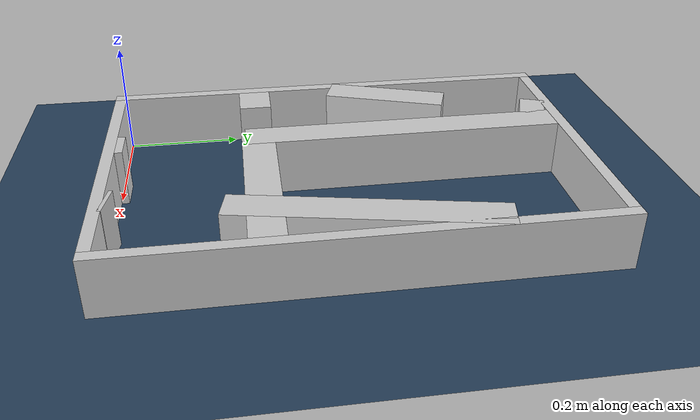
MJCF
<?xml version="1.0" ?>
<mujoco model="generated_real_template">
  <compiler angle="degree"/>
  <option timestep="0.002" integrator="implicitfast" iterations="100" cone="elliptic"/>
  <default>
    <geom density="1"/>
  </default>
  <asset>
    <texture builtin="gradient" height="3072" rgb1="0.3 0.5 0.7" rgb2="0 0 0" type="skybox" width="512"/>
    <texture builtin="checker" height="300" mark="edge" markrgb="0.8 0.8 0.8" name="groundplane" rgb1="0.2 0.3 0.4" rgb2="0.1 0.2 0.3" type="2d" width="300"/>
    <material name="groundplane" reflectance="0.2" texrepeat="5 5" texture="groundplane" texuniform="true"/>
  </asset>
  <worldbody>
    <light dir="0 0 -1" directional="true" pos="0 0 1.5"/>
    <geom name="floor" type="plane" condim="4" friction="0.5 0.005 0.001" material="groundplane" size="0 0 0.05"/>
    <body name="walls">
      <geom name="wall_boundary_left" type="box" condim="4" friction="1.0 0.005 0.0001" rgba="0.8 0.8 0.8 1" pos="-0.010000 0.387500 0.050000" euler="0 0 0.000000" size="0.010000 0.407500 0.050000"/>
      <geom name="wall_boundary_right" type="box" condim="4" friction="1.0 0.005 0.0001" rgba="0.8 0.8 0.8 1" pos="0.500000 0.387500 0.050000" euler="0 0 0.000000" size="0.010000 0.407500 0.050000"/>
      <geom name="wall_boundary_bottom" type="box" condim="4" friction="1.0 0.005 0.0001" rgba="0.8 0.8 0.8 1" pos="0.245000 -0.010000 0.050000" euler="0 0 0.000000" size="0.245000 0.010000 0.050000"/>
      <geom name="wall_boundary_top" type="box" condim="4" friction="1.0 0.005 0.0001" rgba="0.8 0.8 0.8 1" pos="0.245000 0.785000 0.050000" euler="0 0 0.000000" size="0.245000 0.010000 0.050000"/>
      <geom name="wall_inner_1_1" type="box" condim="4" friction="1.0 0.005 0.0001" rgba="0.8 0.8 0.8 1" pos="0.043172 0.491704 0.050000" euler="0 0 70.852677" size="0.110513 0.028500 0.050000"/>
      <geom name="wall_inner_1_2" type="box" condim="4" friction="1.0 0.005 0.0001" rgba="0.8 0.8 0.8 1" pos="0.134112 0.753621 0.050000" euler="0 0 70.852677" size="0.022631 0.028500 0.050000"/>
      <geom name="wall_inner_2_1" type="box" condim="4" friction="1.0 0.005 0.0001" rgba="0.8 0.8 0.8 1" pos="0.439085 0.391976 0.050000" euler="0 0 -101.337558" size="0.218580 0.028500 0.050000"/>
      <geom name="wall_inner_2_2" type="box" condim="4" friction="1.0 0.005 0.0001" rgba="0.8 0.8 0.8 1" pos="0.361113 0.003094 0.050000" euler="0 0 -101.337558" size="0.003155 0.028500 0.050000"/>
      <geom name="wall_inner_3_1" type="box" condim="4" friction="1.0 0.005 0.0001" rgba="0.8 0.8 0.8 1" pos="0.182543 0.006628 0.050000" euler="0 0 90.000000" size="0.006628 0.028500 0.050000"/>
      <geom name="wall_inner_3_2" type="box" condim="4" friction="1.0 0.005 0.0001" rgba="0.8 0.8 0.8 1" pos="0.182543 0.496931 0.050000" euler="0 0 90.000000" size="0.278069 0.028500 0.050000"/>
      <geom name="wall_inner_4_1" type="box" condim="4" friction="1.0 0.005 0.0001" rgba="0.8 0.8 0.8 1" pos="0.034572 0.241029 0.050000" euler="0 0 0.000000" size="0.034572 0.028500 0.050000"/>
      <geom name="wall_inner_4_2" type="box" condim="4" friction="1.0 0.005 0.0001" rgba="0.8 0.8 0.8 1" pos="0.333144 0.241029 0.050000" euler="0 0 0.000000" size="0.156856 0.028500 0.050000"/>
    </body>
  </worldbody>
</mujoco>
